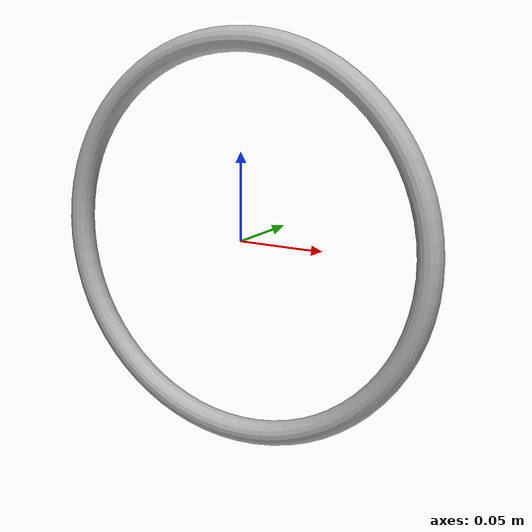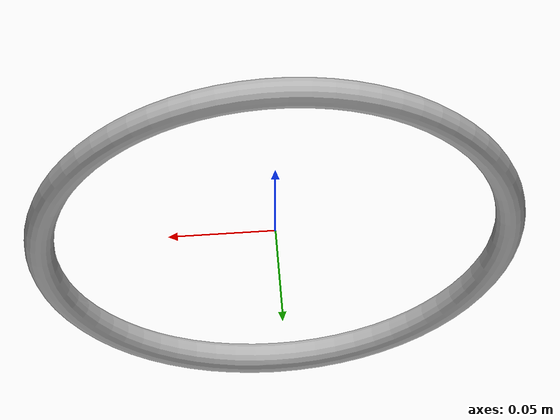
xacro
<?xml version="1.0" ?>
<robot name="ring_final_red" xmlns:xacro="http://www.ros.org/wiki/xacro">

<xacro:include filename="$(find ring_final_red_description)/urdf/materials.xacro" />
<xacro:include filename="$(find ring_final_red_description)/urdf/ring_final_red.trans" />
<xacro:include filename="$(find ring_final_red_description)/urdf/ring_final_red.gazebo" />
<link name="base_link">
  <inertial>
    <origin xyz="0.0 0.0 0.0" rpy="0 0 0"/>
    <mass value="0.5650353454425836"/>
    <inertia ixx="0.003473" iyy="0.006927" izz="0.003473" ixy="0.0" iyz="0.0" ixz="0.0"/>
  </inertial>
  <visual>
    <origin xyz="0 0 0" rpy="0 0 0"/>
    <geometry>
      <mesh filename="package://ring_final_red_description/meshes/base_link.stl" scale="0.001 0.001 0.001"/>
    </geometry>
    <material name="silver"/>
  </visual>
  <collision>
    <origin xyz="0 0 0" rpy="0 0 0"/>
    <geometry>
      <mesh filename="package://ring_final_red_description/meshes/base_link.stl" scale="0.001 0.001 0.001"/>
    </geometry>
  </collision>
</link>

</robot>

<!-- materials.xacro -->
<robot name="ring_final_red" xmlns:xacro="http://www.ros.org/wiki/xacro" >

<material name="silver">
  <color rgba="0.700 0.700 0.700 1.000"/>
</material>

</robot>

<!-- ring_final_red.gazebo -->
<robot name="ring_final_red" xmlns:xacro="http://www.ros.org/wiki/xacro" >

<xacro:property name="body_color" value="Gazebo/Silver" />

<gazebo>
  <plugin name="control" filename="libgazebo_ros_control.so"/>
</gazebo>
<gazebo reference="base_link">
  <material>${body_color}</material>
  <mu1>0.2</mu1>
  <mu2>0.2</mu2>
  <selfCollide>true</selfCollide>
  <gravity>true</gravity>
</gazebo>

</robot>
